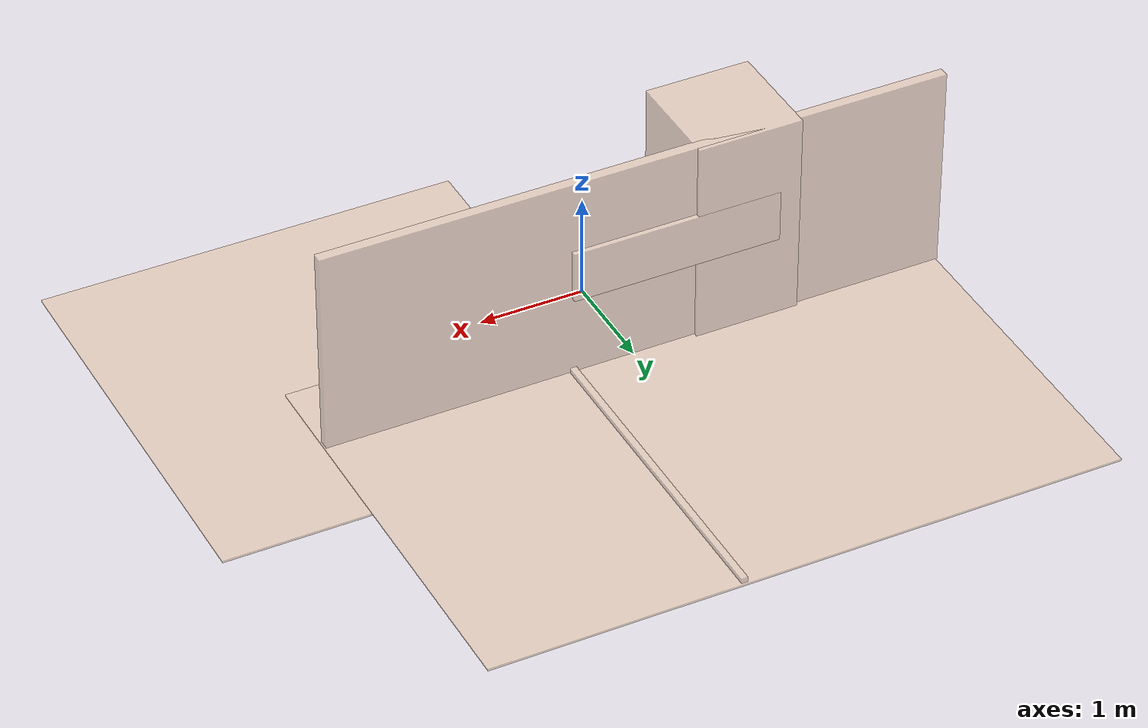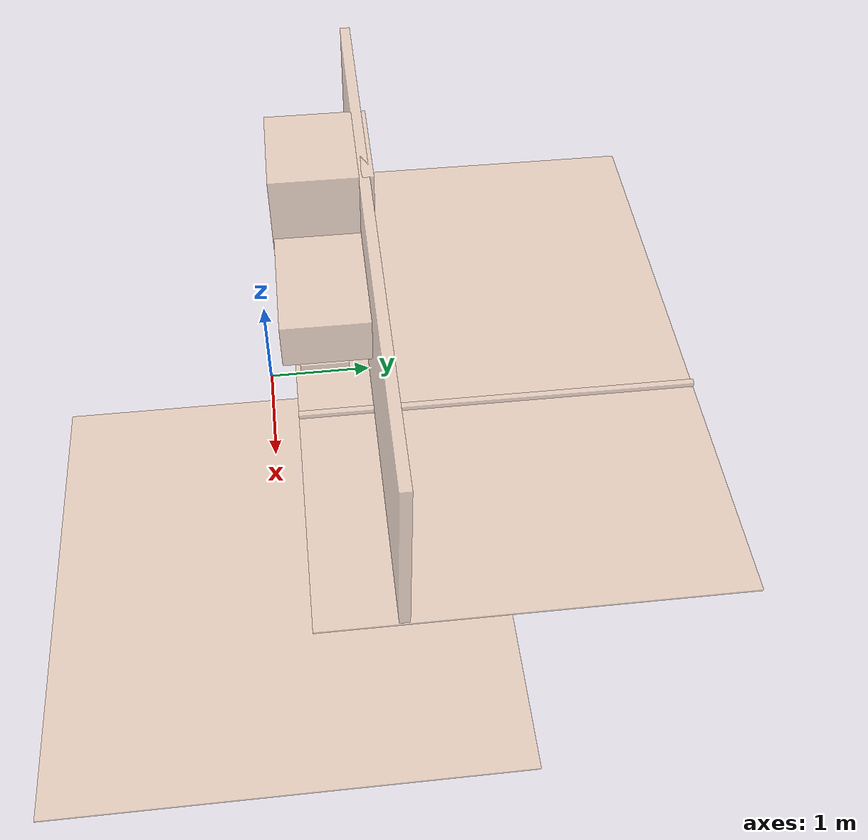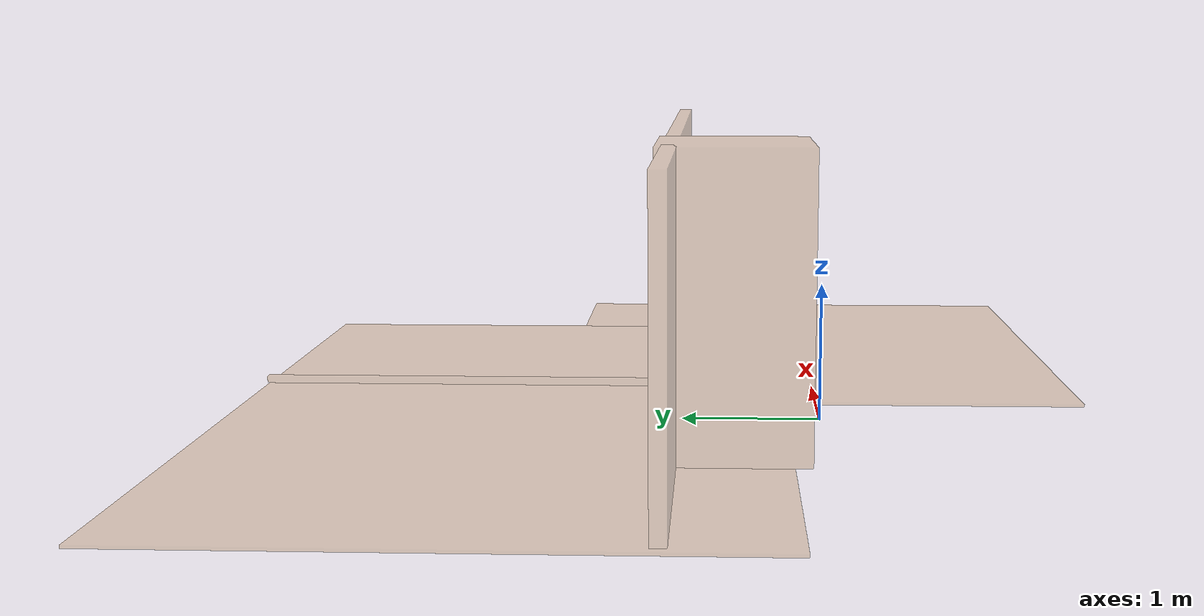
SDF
<?xml version="1.0" ?>
<sdf version="1.6">
  <model name="optimize_manipulation_trajectory_test_environment">
    <link name="environment">
      <visual name="box_1_visual">
        <pose>2.36 0 0.03 0 0 0</pose>
        <geometry>
          <box>
            <size>4 4 0.02</size>
          </box>
        </geometry>
        <material>
          <diffuse>0.9297 0.7930 0.6758 0.6</diffuse>
        </material>
      </visual>
      <collision name="box_1_collision">
        <pose>2.36 0 0.03 0 0 0</pose>
        <geometry>
          <box>
            <size>4 4 0.02</size>
          </box>
        </geometry>
      </collision>
      <visual name="box_2_visual">
        <pose>0 2.25 0.07 0 0 0</pose>
        <geometry>
          <box>
            <size>6 4 0.02</size>
          </box>
        </geometry>
        <material>
          <diffuse>0.9297 0.7930 0.6758 0.6</diffuse>
        </material>
      </visual>
      <collision name="box_2_collision">
        <pose>0 2.25 0.07 0 0 0</pose>
        <geometry>
          <box>
            <size>6 4 0.02</size>
          </box>
        </geometry>
      </collision>
      <visual name="box_3_visual">
        <pose>0.64 2.25 0.12 0 0 0</pose>
        <geometry>
          <box>
            <size>0.06 4 0.05</size>
          </box>
        </geometry>
        <material>
          <diffuse>0.9297 0.7930 0.6758 0.6</diffuse>
        </material>
      </visual>
      <collision name="box_3_collision">
        <pose>0.64 2.25 0.12 0 0 0</pose>
        <geometry>
          <box>
            <size>0.06 4 0.05</size>
          </box>
        </geometry>
      </collision>
      <visual name="box_4_visual">
        <pose>0 1.05 1.1 0 0 0</pose>
        <geometry>
          <box>
            <size>6 0.1 2</size>
          </box>
        </geometry>
        <material>
          <diffuse>0.9297 0.7930 0.6758 0.6</diffuse>
        </material>
      </visual>
      <collision name="box_4_collision">
        <pose>0 1.05 1.1 0 0 0</pose>
        <geometry>
          <box>
            <size>6 0.1 2</size>
          </box>
        </geometry>
      </collision>
      <visual name="box_5_visual">
        <pose>-1.05 0.64 1.1 0 0 0</pose>
        <geometry>
          <box>
            <size>1 1 2</size>
          </box>
        </geometry>
        <material>
          <diffuse>0.9297 0.7930 0.6758 0.6</diffuse>
        </material>
      </visual>
      <collision name="box_5_collision">
        <pose>-1.05 0.64 1.1 0 0 0</pose>
        <geometry>
          <box>
            <size>1 1 2</size>
          </box>
        </geometry>
      </collision>
      <visual name="box_6_visual">
        <pose>-0.19 0.55 0.12 0 0 0</pose>
        <geometry>
          <box>
            <size>0.5 0.5 0.12</size>
          </box>
        </geometry>
        <material>
          <diffuse>0.9297 0.7930 0.6758 0.6</diffuse>
        </material>
      </visual>
      <collision name="box_6_collision">
        <pose>-0.19 0.55 0.12 0 0 0</pose>
        <geometry>
          <box>
            <size>0.5 0.5 0.12</size>
          </box>
        </geometry>
      </collision>
      <visual name="box_7_visual">
        <pose>-0.35 0.65 1.15 0 0 0</pose>
        <geometry>
          <box>
            <size>2 1 0.5</size>
          </box>
        </geometry>
        <material>
          <diffuse>0.9297 0.7930 0.6758 0.6</diffuse>
        </material>
      </visual>
      <collision name="box_7_collision">
        <pose>-0.35 0.65 1.15 0 0 0</pose>
        <geometry>
          <box>
            <size>2 1 0.5</size>
          </box>
        </geometry>
      </collision>
    </link>
  </model>
</sdf>
